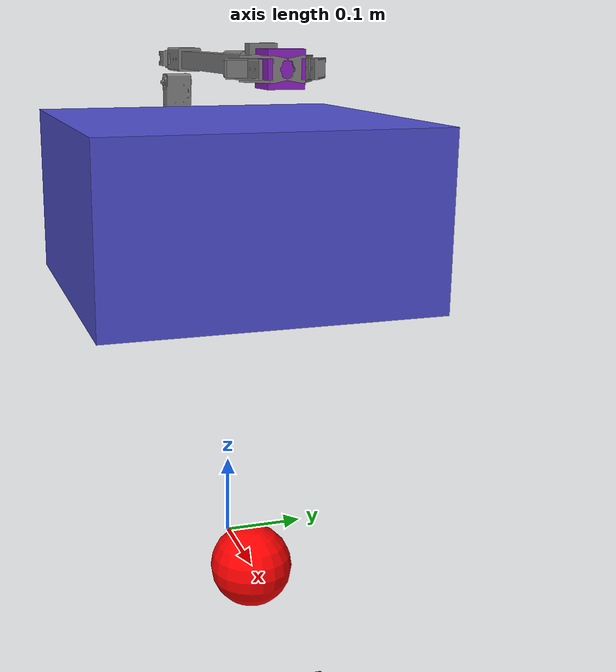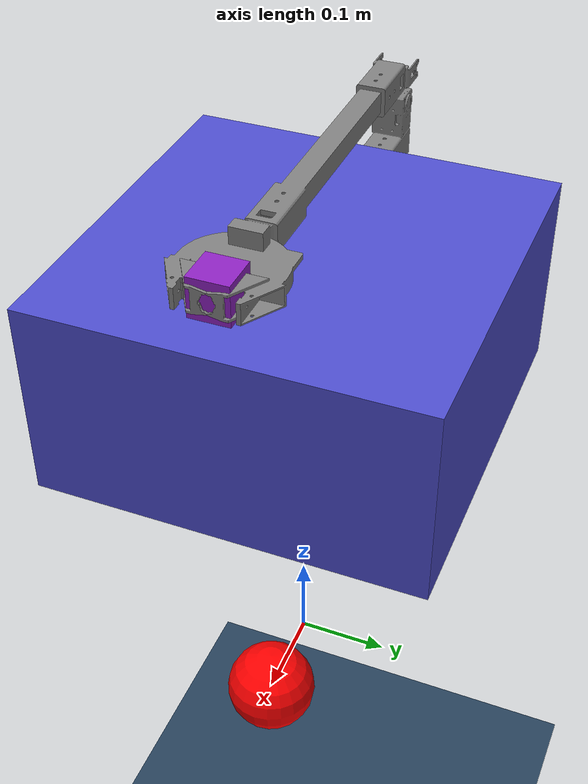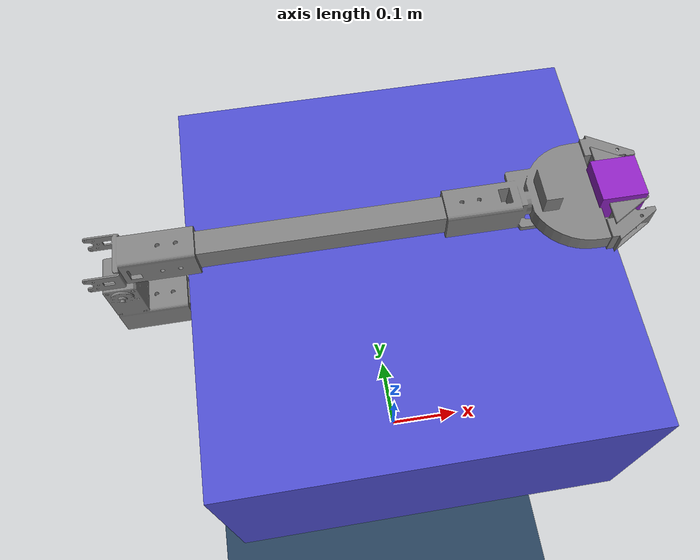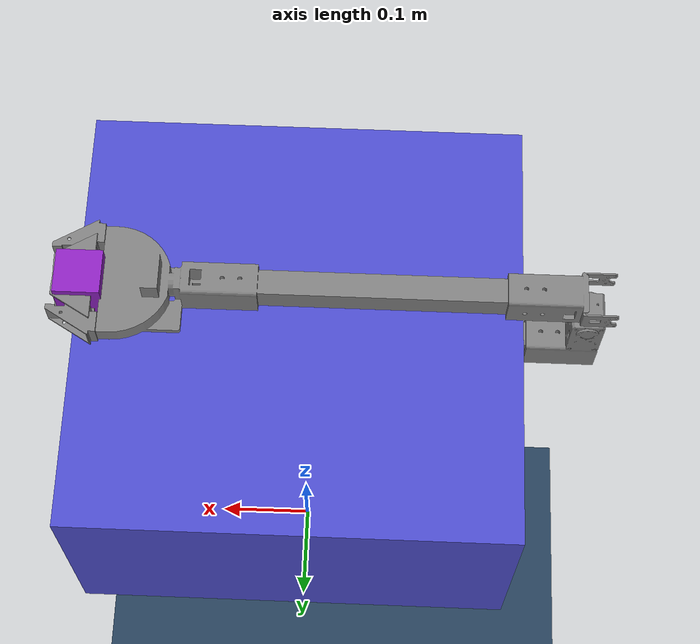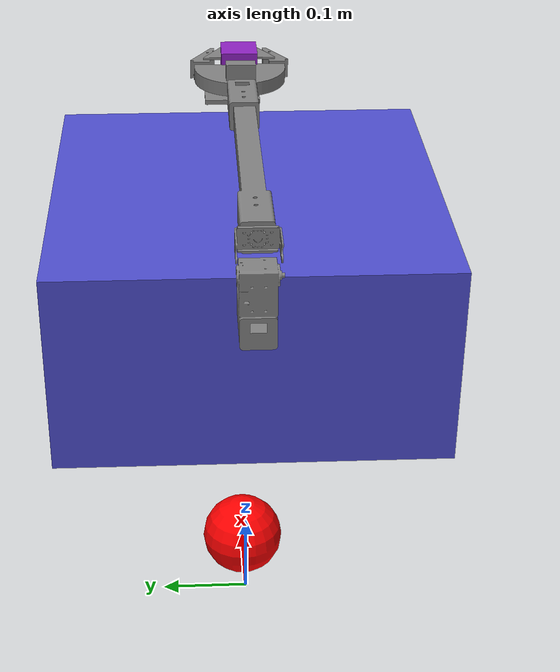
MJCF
<mujoco model="hexa_scorpion">
    <option timestep="0.02"
            gravity="0 0 0"
            density="1.2"
            viscosity="0.00002"
            integrator="implicit"
            cone="pyramidal"
            noslip_iterations="1000"
            sdf_iterations="1000"
            sdf_initpoints="1000"
            iterations="10000"
            ls_tolerance="0.0001"
            ls_iterations="1000"
            o_margin="0.02"
            o_solref="0.02 1"
            o_solimp="0.9 0.95 0.001" >
    </option>

    <compiler meshdir="meshes" angle = "radian" autolimits = "true"/>

    <asset>
        <texture name="myTexture" file="checkered.png" />
        <material name="checkered" texture="myTexture" />
        <texture name="grid" type="2d" builtin="checker" rgb1=".1 .2 .3"
        rgb2=".2 .3 .4" width="512" height="512" mark="edge" markrgb=".2 .3 .4"/>
        <material name="grid" texture="grid" texrepeat="1 1" texuniform="true"
        reflectance=".2"/>

        <mesh name="arm_link1_pitch" file="arm_link1_pitch.stl" scale="0.001 0.001 0.001"/>
        <mesh name="arm_link2_pitch" file="arm_link2_pitch.stl" scale="0.001 0.001 0.001"/>
        <mesh name="arm_gripper" file="finger.stl" scale="0.001 0.001 0.001"/>
        <mesh name="prop_ccw" file="prop_ccw_assembly_remeshed_v3.stl" scale="0.001 0.001 0.001"/>
        <mesh name="prop" file="propeller.stl" scale="0.001 0.001 0.001"/>
    </asset>

    <default>
      <geom friction="0.5 0.005 0.0001"/>
    </default>
    <worldbody>
        <!-- Floor -->
        <geom name="ground" type="plane" pos="0 0 -.5" size="10 10 .1" material="grid" solimp=".99 .99 .01" solref=".001 1"/>
        <!-- Wall -->
        <!-- Light source definition -->
        <light name="my_light" pos="0 0 35" dir="0 0 -1" diffuse="1 1 1" specular="0.5 0.5 0.5"/>
        <!-- Site -->
        <site name="target_marker" pos="0.1 0 0" size="0.05" rgba="1 0 0 1" type="sphere"/>
        <body name="base_link" pos="0 0 0.5" quat="1 0 0 0">
            <!-- base_camera -->
            <camera name="base" mode="fixed" pos="0.175 0 0.075" euler="1.571 -1.571 0" fovy="43"/>
            <geom   name="main_body"
                    type="box"
                    pos="0 0 -0.065"
                    quat="1 0 0 0"
                    size="0.2 0.2 0.105"
                    rgba="0.3 0.3 0.8 1"
                    mass="5"
                    contype="1"
                    conaffinity="1" />
            <joint name="main_joint" type="free"/>

            <body name="manipulation_link1_pitch_link" pos="0.09406 0.0 0.018872" quat="0.707 0.707 0 0">
                <geom type="mesh" mesh="arm_link1_pitch" pos = "0 0 0" quat="1 0 0 0" mass = "0.1"/>
                <joint name="arm_link1_pitch_joint" type="hinge" limited= "false" pos="0 0 0" axis="0 0 -1" range="-0.5 3.0" damping="0.0"/>
                <body name="manipulation_link2_pitch_link" pos="-0.364 0.0838 0" quat="1 0 0 0">
                    <geom type="mesh" mesh="arm_link2_pitch" mass="0.1"/>
                    <joint name="arm_link2_pitch_joint" type="hinge" pos="0 0 0" axis="0 0 1" range="-0.5 3.0" damping="0.0"/>
                    <!-- ee_amera -->
                    <camera name="ee" mode="fixed" pos="0.36 0.05 0" axisangle="0 1 0 -1.57" fovy="43"/>
                    <!-- add a box here -->
                    <body name="ee" pos="0.455 0 0" quat="0.707 -0.707 0 0">
                        <inertial pos="-0.00 -0.000 0.00" quat="1 0 0 0" mass="0.001" diaginertia="0.0000 0.0000 0" />
                        <geom type="box" size="0.02 0.02 0.02" rgba="0.55294 0.1294 0.75294 1" />
                    </body>
                    <body name="manipulation_lfinger_link" pos="0.46025 0.0 -0.015" quat="0 0.707 0 0.707">
                        <geom type="mesh" mesh="arm_gripper" mass="0.01"/>
                        <joint name="arm_lfinger_joint" type="slide" pos="0 0 0" axis="1 0 0" range="-0.05 0.0" damping="0.0"/>
                    </body>
                    <body name="manipulation_rfinger_link" pos="0.46025 0 0.015" quat="0.707 0.0 0.707 0.0">
                        <geom type="mesh" mesh="arm_gripper" mass="0.01"/>
                        <joint name="arm_rfinger_joint" type="slide" pos="0 0 0" axis="1 0 0" range="-0.05 0.0" damping="0.0"/>
                    </body>
                </body>

            </body>
        </body>

    </worldbody>
    <actuator>
        <motor name="fx" joint="main_joint" gear="1 0 0 0 0 0" />
        <motor name="fy" joint="main_joint" gear="0 1 0 0 0 0" />
        <motor name="fz" joint="main_joint" gear="0 0 1 0 0 0" />
        <motor name="tx" joint="main_joint" gear="0 0 0 1 0 0" />
        <motor name="ty" joint="main_joint" gear="0 0 0 0 1 0" />
        <motor name="tz" joint="main_joint" gear="0 0 0 0 0 1" />

        <motor name="manipulation_link1_pitch_motor" joint="arm_link1_pitch_joint" ctrlrange="-1 1"/>
        <motor name="manipulation_link2_pitch_motor" joint="arm_link2_pitch_joint" ctrlrange="-1 1"/>
        <motor name="manipulation_lfinger_motor" joint="arm_lfinger_joint" ctrlrange="-10 10"/>
        <motor name="manipulation_rfinger_motor" joint="arm_rfinger_joint" ctrlrange="-10 10"/>

    </actuator>

</mujoco>
